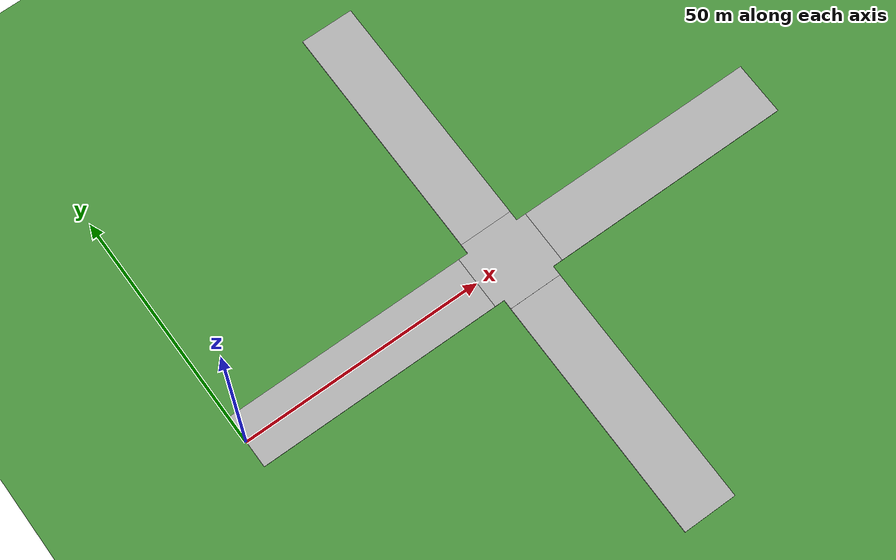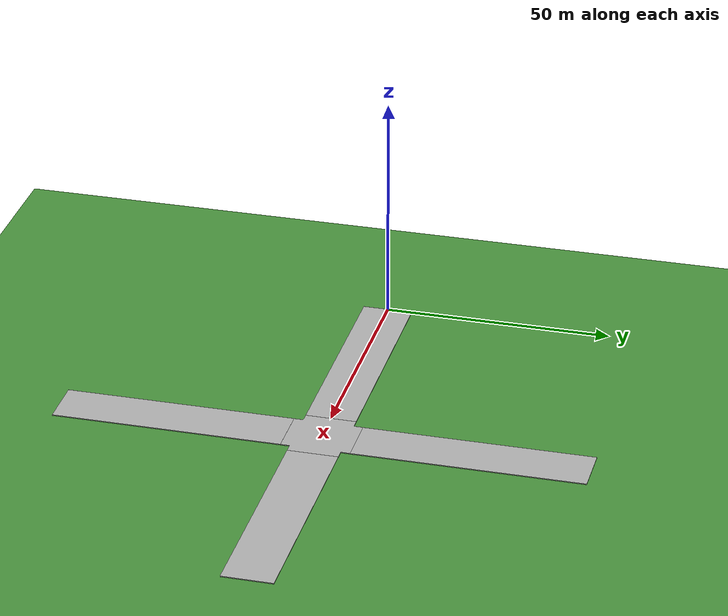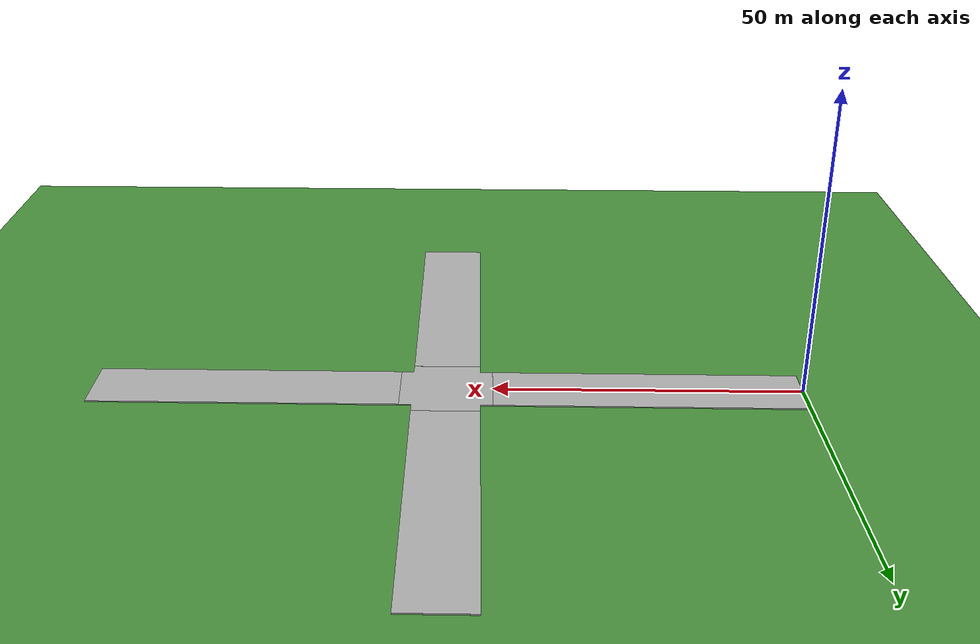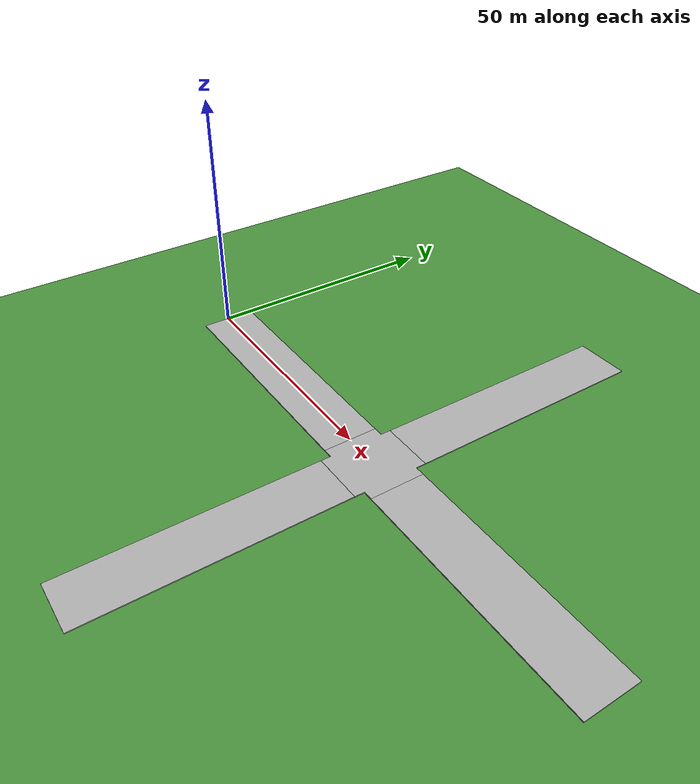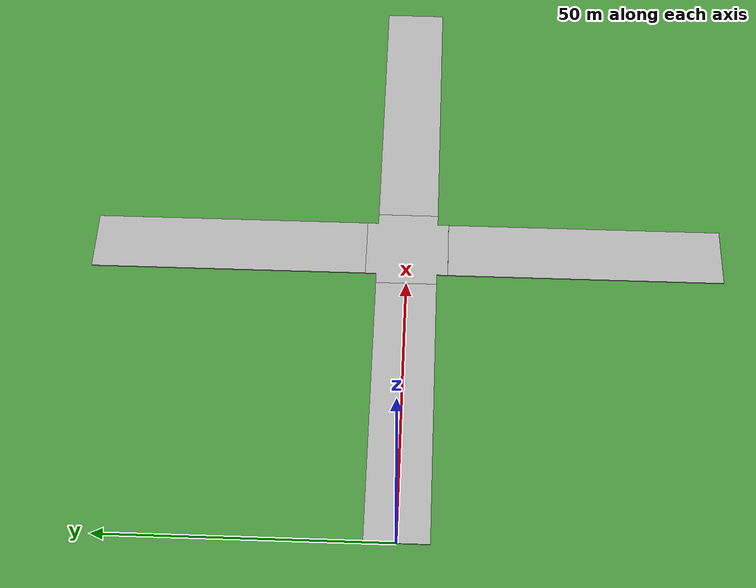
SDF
<sdf version="1.6">
 <world name="default">
  <light name="sun" type="directional">
   <pose>0 0 10 0 -0 0</pose>
   <diffuse>0.8 0.8 0.8 1</diffuse>
   <specular>0.2 0.2 0.2 1</specular>
   <attenuation>
    <range>1000</range>
    <constant>0.9</constant>
    <linear>0.01</linear>
    <quadratic>0.001</quadratic>
   </attenuation>
   <direction>-0.5 0.1 -0.9</direction>
  </light>
  <model name="ground_plane">
   <static>1</static>
   <link name="link">
    <collision name="collision">
     <geometry><plane><normal>0 0 1</normal><size>100 100</size></plane></geometry>
     <surface><friction><ode><mu>100</mu><mu2>50</mu2></ode></friction></surface>
    </collision>
    <visual name="visual">
     <cast_shadows>0</cast_shadows>
     <geometry><plane><normal>0 0 1</normal><size>10000 10000</size></plane></geometry>
     <material>
      <script>
       <uri>model://ds_grass_background/materials/scripts</uri>
       <uri>model://ds_grass_background/materials/textures</uri>
       <name>GrassBackground</name>
      </script>
     </material>
    </visual>
   </link>
  </model>
  <gravity>0 0 -9.8</gravity>
  <magnetic_field>6e-06 2.3e-05 -4.2e-05</magnetic_field>
  <atmosphere type="adiabatic"/>
  <physics name="default_physics" default="0" type="ode">
   <max_step_size>0.001</max_step_size>
   <real_time_factor>1</real_time_factor>
   <real_time_update_rate>1000</real_time_update_rate>
  </physics>
  <scene>
   <ambient>0.4 0.4 0.4 1</ambient>
   <background>0.7 0.7 0.7 1</background>
   <shadows>1</shadows>
   <grid>0</grid>
  </scene>
  <spherical_coordinates>
   <surface_model>EARTH_WGS84</surface_model>
   <latitude_deg>0</latitude_deg>
   <longitude_deg>0</longitude_deg>
   <elevation>0</elevation>
   <heading_deg>0</heading_deg>
  </spherical_coordinates>
  <model name="(DS) Straight Road - 50m">
   <static>1</static>
   <link name="link">
    <inertial>
     <mass>1</mass>
     <inertia><ixx>1</ixx><iyy>1</iyy><izz>1</izz><ixy>0</ixy><ixz>0</ixz><iyz>0</iyz></inertia>
    </inertial>
    <collision name="collision">
     <geometry><mesh><uri>model://ds_straight_road_50m/meshes/straight_road_50m.dae</uri></mesh></geometry>
    </collision>
    <visual name="visual">
     <geometry><mesh><uri>model://ds_straight_road_50m/meshes/straight_road_50m.dae</uri></mesh></geometry>
    </visual>
   </link>
   <pose>25 10 0 0 0 0</pose>
  </model>
  <model name="(DS) Straight Road - 50m_1">
   <static>1</static>
   <link name="link">
    <inertial>
     <mass>1</mass>
     <inertia><ixx>1</ixx><iyy>1</iyy><izz>1</izz><ixy>0</ixy><ixz>0</ixz><iyz>0</iyz></inertia>
    </inertial>
    <collision name="collision">
     <geometry><mesh><uri>model://ds_straight_road_50m/meshes/straight_road_50m.dae</uri></mesh></geometry>
    </collision>
    <visual name="visual">
     <geometry><mesh><uri>model://ds_straight_road_50m/meshes/straight_road_50m.dae</uri></mesh></geometry>
    </visual>
   </link>
   <pose>90 10 0 0 0 0</pose>
  </model>
  <model name="(DS) Straight Road - 50m_2">
   <static>1</static>
   <link name="link">
    <inertial>
     <mass>1</mass>
     <inertia><ixx>1</ixx><iyy>1</iyy><izz>1</izz><ixy>0</ixy><ixz>0</ixz><iyz>0</iyz></inertia>
    </inertial>
    <collision name="collision">
     <geometry><mesh><uri>model://ds_straight_road_50m/meshes/straight_road_50m.dae</uri></mesh></geometry>
    </collision>
    <visual name="visual">
     <geometry><mesh><uri>model://ds_straight_road_50m/meshes/straight_road_50m.dae</uri></mesh></geometry>
    </visual>
   </link>
   <pose>67.5 32.5 0 0 0 -1.57</pose>
  </model>
  <model name="(DS) Straight Road - 50m_3">
   <static>1</static>
   <link name="link">
    <inertial>
     <mass>1</mass>
     <inertia><ixx>1</ixx><iyy>1</iyy><izz>1</izz><ixy>0</ixy><ixz>0</ixz><iyz>0</iyz></inertia>
    </inertial>
    <collision name="collision">
     <geometry><mesh><uri>model://ds_straight_road_50m/meshes/straight_road_50m.dae</uri></mesh></geometry>
    </collision>
    <visual name="visual">
     <geometry><mesh><uri>model://ds_straight_road_50m/meshes/straight_road_50m.dae</uri></mesh></geometry>
    </visual>
   </link>
   <pose>67.5 -32.5 0 0 0 -1.57</pose>
  </model>
  <model name="(DS) Intersection Japan">
   <static>1</static>
   <link name="link">
    <inertial>
     <mass>1</mass>
     <inertia><ixx>1</ixx><iyy>1</iyy><izz>1</izz><ixy>0</ixy><ixz>0</ixz><iyz>0</iyz></inertia>
    </inertial>
    <collision name="collision">
     <geometry><mesh><uri>model://ds_intersection/meshes/intersection.dae</uri></mesh></geometry>
    </collision>
    <visual name="visual">
     <geometry><mesh><uri>model://ds_intersection/meshes/intersection.dae</uri></mesh></geometry>
    </visual>
   </link>
   <pose>57.5 0 0 0 0 0</pose>
  </model>
 </world>
</sdf>
